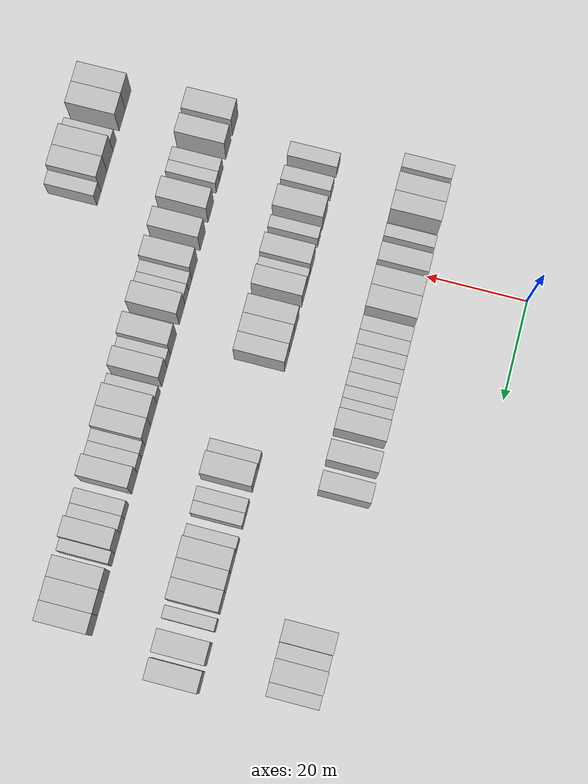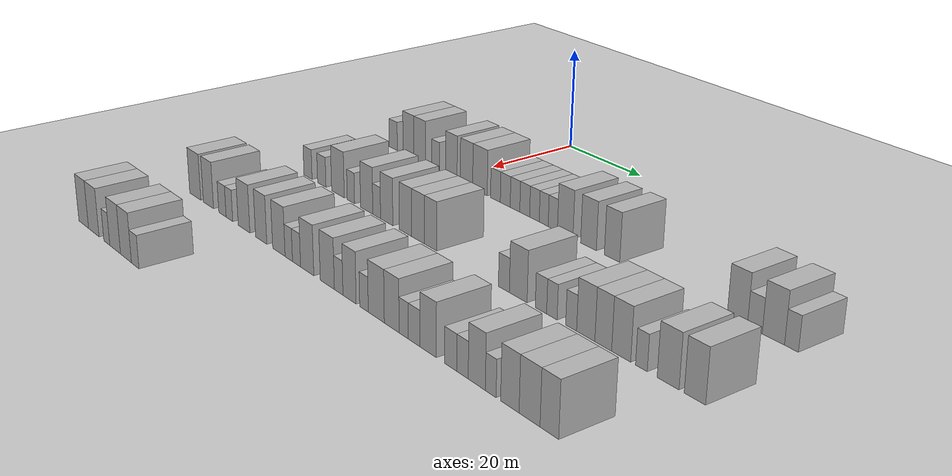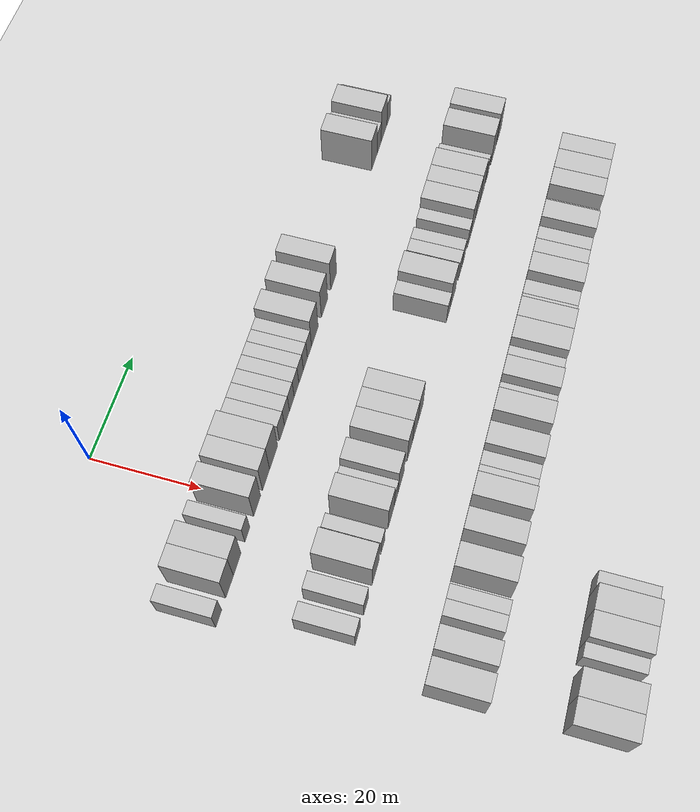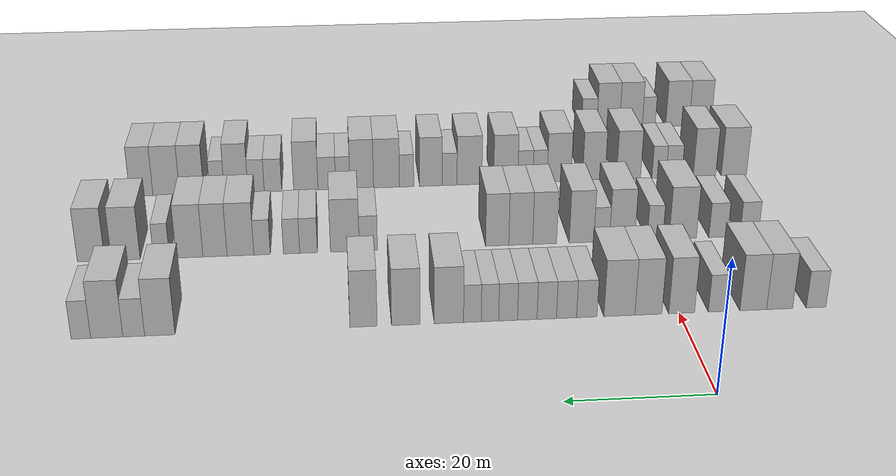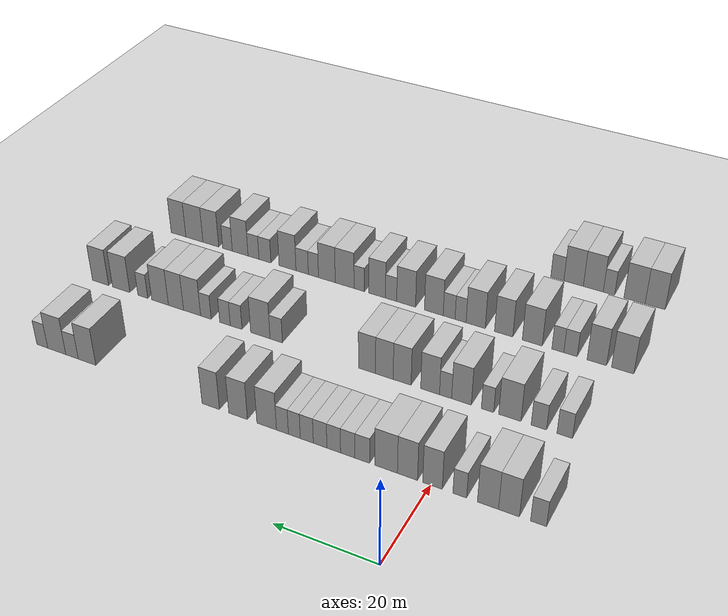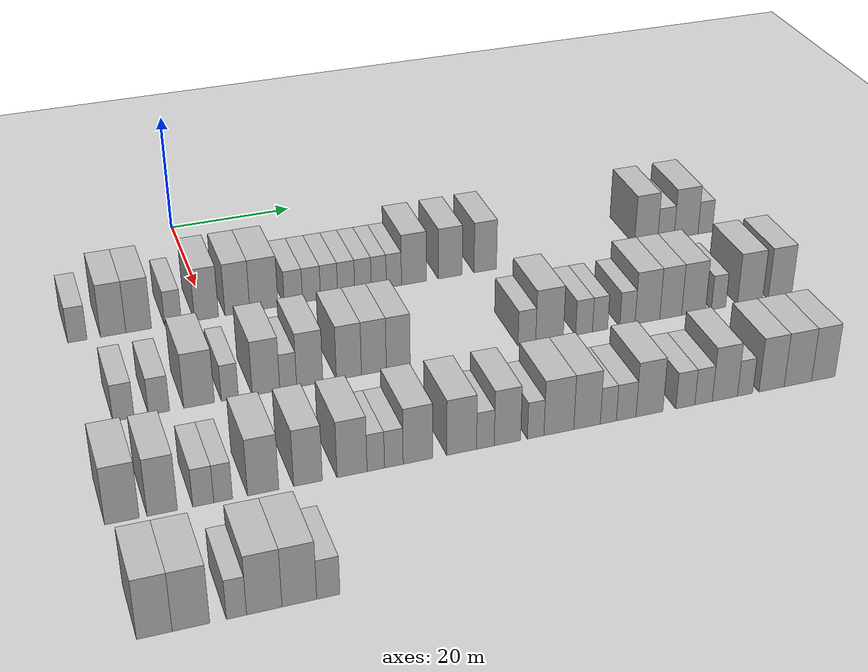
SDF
<sdf version="1.6">
 <world name="default">
  <include><name>ground_plane_1</name><uri>model://HANNAS_ground_plane</uri></include>
  <model name="building_91">
   <static>1</static>
   <pose>25.0000 -19.8801 0 0.000000 0.000000 0.000000</pose>
   <link name="link">
    <pose>0 0 3.00 0 0 0</pose>
    <collision name="collision"><geometry><box><size>10.0000 2.8646 6.0000</size></box></geometry></collision>
    <visual name="visual">
     <cast_shadows>0</cast_shadows>
     <geometry><box><size>10.0000 2.8646 6.0000</size></box></geometry>
     <material>
      <script>
       <uri>model://HANNAS_wall/materials/scripts</uri>
       <uri>model://HANNAS_wall/materials/textures</uri>
       <name>vrc/HANNAS_wall</name>
      </script>
     </material>
    </visual>
   </link>
  </model>
  <model name="building_92">
   <static>1</static>
   <pose>25.0000 -14.5458 0 0.000000 0.000000 0.000000</pose>
   <link name="link">
    <pose>0 0 4.50 0 0 0</pose>
    <collision name="collision"><geometry><box><size>10.0000 3.8040 9.0000</size></box></geometry></collision>
    <visual name="visual">
     <cast_shadows>0</cast_shadows>
     <geometry><box><size>10.0000 3.8040 9.0000</size></box></geometry>
     <material>
      <script>
       <uri>model://HANNAS_wall/materials/scripts</uri>
       <uri>model://HANNAS_wall/materials/textures</uri>
       <name>vrc/HANNAS_wall</name>
      </script>
     </material>
    </visual>
   </link>
  </model>
  <model name="building_93">
   <static>1</static>
   <pose>25.0000 -10.7004 0 0.000000 0.000000 0.000000</pose>
   <link name="link">
    <pose>0 0 4.50 0 0 0</pose>
    <collision name="collision"><geometry><box><size>10.0000 3.8866 9.0000</size></box></geometry></collision>
    <visual name="visual">
     <cast_shadows>0</cast_shadows>
     <geometry><box><size>10.0000 3.8866 9.0000</size></box></geometry>
     <material>
      <script>
       <uri>model://HANNAS_wall/materials/scripts</uri>
       <uri>model://HANNAS_wall/materials/textures</uri>
       <name>vrc/HANNAS_wall</name>
      </script>
     </material>
    </visual>
   </link>
  </model>
  <model name="building_94">
   <static>1</static>
   <pose>25.0000 -5.4695 0 0.000000 0.000000 0.000000</pose>
   <link name="link">
    <pose>0 0 3.00 0 0 0</pose>
    <collision name="collision"><geometry><box><size>10.0000 2.5754 6.0000</size></box></geometry></collision>
    <visual name="visual">
     <cast_shadows>0</cast_shadows>
     <geometry><box><size>10.0000 2.5754 6.0000</size></box></geometry>
     <material>
      <script>
       <uri>model://HANNAS_wall/materials/scripts</uri>
       <uri>model://HANNAS_wall/materials/textures</uri>
       <name>vrc/HANNAS_wall</name>
      </script>
     </material>
    </visual>
   </link>
  </model>
  <model name="building_95">
   <static>1</static>
   <pose>25.0000 -0.3213 0 0.000000 0.000000 0.000000</pose>
   <link name="link">
    <pose>0 0 4.50 0 0 0</pose>
    <collision name="collision"><geometry><box><size>10.0000 3.7209 9.0000</size></box></geometry></collision>
    <visual name="visual">
     <cast_shadows>0</cast_shadows>
     <geometry><box><size>10.0000 3.7209 9.0000</size></box></geometry>
     <material>
      <script>
       <uri>model://HANNAS_wall/materials/scripts</uri>
       <uri>model://HANNAS_wall/materials/textures</uri>
       <name>vrc/HANNAS_wall</name>
      </script>
     </material>
    </visual>
   </link>
  </model>
  <model name="building_96">
   <static>1</static>
   <pose>25.0000 4.4772 0 0.000000 0.000000 0.000000</pose>
   <link name="link">
    <pose>0 0 4.50 0 0 0</pose>
    <collision name="collision"><geometry><box><size>10.0000 3.8762 9.0000</size></box></geometry></collision>
    <visual name="visual">
     <cast_shadows>0</cast_shadows>
     <geometry><box><size>10.0000 3.8762 9.0000</size></box></geometry>
     <material>
      <script>
       <uri>model://HANNAS_wall/materials/scripts</uri>
       <uri>model://HANNAS_wall/materials/textures</uri>
       <name>vrc/HANNAS_wall</name>
      </script>
     </material>
    </visual>
   </link>
  </model>
  <model name="building_97">
   <static>1</static>
   <pose>25.0000 8.6378 0 0.000000 0.000000 0.000000</pose>
   <link name="link">
    <pose>0 0 4.50 0 0 0</pose>
    <collision name="collision"><geometry><box><size>10.0000 4.4450 9.0000</size></box></geometry></collision>
    <visual name="visual">
     <cast_shadows>0</cast_shadows>
     <geometry><box><size>10.0000 4.4450 9.0000</size></box></geometry>
     <material>
      <script>
       <uri>model://HANNAS_wall/materials/scripts</uri>
       <uri>model://HANNAS_wall/materials/textures</uri>
       <name>vrc/HANNAS_wall</name>
      </script>
     </material>
    </visual>
   </link>
  </model>
  <model name="building_98">
   <static>1</static>
   <pose>25.0000 13.3096 0 0.000000 0.000000 0.000000</pose>
   <link name="link">
    <pose>0 0 3.00 0 0 0</pose>
    <collision name="collision"><geometry><box><size>10.0000 2.8985 6.0000</size></box></geometry></collision>
    <visual name="visual">
     <cast_shadows>0</cast_shadows>
     <geometry><box><size>10.0000 2.8985 6.0000</size></box></geometry>
     <material>
      <script>
       <uri>model://HANNAS_wall/materials/scripts</uri>
       <uri>model://HANNAS_wall/materials/textures</uri>
       <name>vrc/HANNAS_wall</name>
      </script>
     </material>
    </visual>
   </link>
  </model>
  <model name="building_99">
   <static>1</static>
   <pose>25.0000 16.2000 0 0.000000 0.000000 0.000000</pose>
   <link name="link">
    <pose>0 0 3.00 0 0 0</pose>
    <collision name="collision"><geometry><box><size>10.0000 2.8823 6.0000</size></box></geometry></collision>
    <visual name="visual">
     <cast_shadows>0</cast_shadows>
     <geometry><box><size>10.0000 2.8823 6.0000</size></box></geometry>
     <material>
      <script>
       <uri>model://HANNAS_wall/materials/scripts</uri>
       <uri>model://HANNAS_wall/materials/textures</uri>
       <name>vrc/HANNAS_wall</name>
      </script>
     </material>
    </visual>
   </link>
  </model>
  <model name="building_100">
   <static>1</static>
   <pose>25.0000 19.0200 0 0.000000 0.000000 0.000000</pose>
   <link name="link">
    <pose>0 0 3.00 0 0 0</pose>
    <collision name="collision"><geometry><box><size>10.0000 2.7577 6.0000</size></box></geometry></collision>
    <visual name="visual">
     <cast_shadows>0</cast_shadows>
     <geometry><box><size>10.0000 2.7577 6.0000</size></box></geometry>
     <material>
      <script>
       <uri>model://HANNAS_wall/materials/scripts</uri>
       <uri>model://HANNAS_wall/materials/textures</uri>
       <name>vrc/HANNAS_wall</name>
      </script>
     </material>
    </visual>
   </link>
  </model>
  <model name="building_101">
   <static>1</static>
   <pose>25.0000 21.7837 0 0.000000 0.000000 0.000000</pose>
   <link name="link">
    <pose>0 0 3.00 0 0 0</pose>
    <collision name="collision"><geometry><box><size>10.0000 2.7697 6.0000</size></box></geometry></collision>
    <visual name="visual">
     <cast_shadows>0</cast_shadows>
     <geometry><box><size>10.0000 2.7697 6.0000</size></box></geometry>
     <material>
      <script>
       <uri>model://HANNAS_wall/materials/scripts</uri>
       <uri>model://HANNAS_wall/materials/textures</uri>
       <name>vrc/HANNAS_wall</name>
      </script>
     </material>
    </visual>
   </link>
  </model>
  <model name="building_102">
   <static>1</static>
   <pose>25.0000 24.5095 0 0.000000 0.000000 0.000000</pose>
   <link name="link">
    <pose>0 0 3.00 0 0 0</pose>
    <collision name="collision"><geometry><box><size>10.0000 2.6818 6.0000</size></box></geometry></collision>
    <visual name="visual">
     <cast_shadows>0</cast_shadows>
     <geometry><box><size>10.0000 2.6818 6.0000</size></box></geometry>
     <material>
      <script>
       <uri>model://HANNAS_wall/materials/scripts</uri>
       <uri>model://HANNAS_wall/materials/textures</uri>
       <name>vrc/HANNAS_wall</name>
      </script>
     </material>
    </visual>
   </link>
  </model>
  <model name="building_103">
   <static>1</static>
   <pose>25.0000 27.0807 0 0.000000 0.000000 0.000000</pose>
   <link name="link">
    <pose>0 0 3.00 0 0 0</pose>
    <collision name="collision"><geometry><box><size>10.0000 2.4607 6.0000</size></box></geometry></collision>
    <visual name="visual">
     <cast_shadows>0</cast_shadows>
     <geometry><box><size>10.0000 2.4607 6.0000</size></box></geometry>
     <material>
      <script>
       <uri>model://HANNAS_wall/materials/scripts</uri>
       <uri>model://HANNAS_wall/materials/textures</uri>
       <name>vrc/HANNAS_wall</name>
      </script>
     </material>
    </visual>
   </link>
  </model>
  <model name="building_104">
   <static>1</static>
   <pose>25.0000 29.5538 0 0.000000 0.000000 0.000000</pose>
   <link name="link">
    <pose>0 0 3.00 0 0 0</pose>
    <collision name="collision"><geometry><box><size>10.0000 2.4853 6.0000</size></box></geometry></collision>
    <visual name="visual">
     <cast_shadows>0</cast_shadows>
     <geometry><box><size>10.0000 2.4853 6.0000</size></box></geometry>
     <material>
      <script>
       <uri>model://HANNAS_wall/materials/scripts</uri>
       <uri>model://HANNAS_wall/materials/textures</uri>
       <name>vrc/HANNAS_wall</name>
      </script>
     </material>
    </visual>
   </link>
  </model>
  <model name="building_105">
   <static>1</static>
   <pose>25.0000 32.8549 0 0.000000 0.000000 0.000000</pose>
   <link name="link">
    <pose>0 0 4.50 0 0 0</pose>
    <collision name="collision"><geometry><box><size>10.0000 4.1170 9.0000</size></box></geometry></collision>
    <visual name="visual">
     <cast_shadows>0</cast_shadows>
     <geometry><box><size>10.0000 4.1170 9.0000</size></box></geometry>
     <material>
      <script>
       <uri>model://HANNAS_wall/materials/scripts</uri>
       <uri>model://HANNAS_wall/materials/textures</uri>
       <name>vrc/HANNAS_wall</name>
      </script>
     </material>
    </visual>
   </link>
  </model>
  <model name="building_106">
   <static>1</static>
   <pose>25.0000 38.9192 0 0.000000 0.000000 0.000000</pose>
   <link name="link">
    <pose>0 0 4.50 0 0 0</pose>
    <collision name="collision"><geometry><box><size>10.0000 4.0115 9.0000</size></box></geometry></collision>
    <visual name="visual">
     <cast_shadows>0</cast_shadows>
     <geometry><box><size>10.0000 4.0115 9.0000</size></box></geometry>
     <material>
      <script>
       <uri>model://HANNAS_wall/materials/scripts</uri>
       <uri>model://HANNAS_wall/materials/textures</uri>
       <name>vrc/HANNAS_wall</name>
      </script>
     </material>
    </visual>
   </link>
  </model>
  <model name="building_107">
   <static>1</static>
   <pose>25.0000 44.8254 0 0.000000 0.000000 0.000000</pose>
   <link name="link">
    <pose>0 0 4.50 0 0 0</pose>
    <collision name="collision"><geometry><box><size>10.0000 3.8010 9.0000</size></box></geometry></collision>
    <visual name="visual">
     <cast_shadows>0</cast_shadows>
     <geometry><box><size>10.0000 3.8010 9.0000</size></box></geometry>
     <material>
      <script>
       <uri>model://HANNAS_wall/materials/scripts</uri>
       <uri>model://HANNAS_wall/materials/textures</uri>
       <name>vrc/HANNAS_wall</name>
      </script>
     </material>
    </visual>
   </link>
  </model>
  <model name="building_108">
   <static>1</static>
   <pose>25.0000 72.9368 0 0.000000 0.000000 0.000000</pose>
   <link name="link">
    <pose>0 0 4.50 0 0 0</pose>
    <collision name="collision"><geometry><box><size>10.0000 4.1406 9.0000</size></box></geometry></collision>
    <visual name="visual">
     <cast_shadows>0</cast_shadows>
     <geometry><box><size>10.0000 4.1406 9.0000</size></box></geometry>
     <material>
      <script>
       <uri>model://HANNAS_wall/materials/scripts</uri>
       <uri>model://HANNAS_wall/materials/textures</uri>
       <name>vrc/HANNAS_wall</name>
      </script>
     </material>
    </visual>
   </link>
  </model>
  <model name="building_109">
   <static>1</static>
   <pose>25.0000 76.4943 0 0.000000 0.000000 0.000000</pose>
   <link name="link">
    <pose>0 0 3.00 0 0 0</pose>
    <collision name="collision"><geometry><box><size>10.0000 2.9743 6.0000</size></box></geometry></collision>
    <visual name="visual">
     <cast_shadows>0</cast_shadows>
     <geometry><box><size>10.0000 2.9743 6.0000</size></box></geometry>
     <material>
      <script>
       <uri>model://HANNAS_wall/materials/scripts</uri>
       <uri>model://HANNAS_wall/materials/textures</uri>
       <name>vrc/HANNAS_wall</name>
      </script>
     </material>
    </visual>
   </link>
  </model>
  <model name="building_110">
   <static>1</static>
   <pose>25.0000 80.1587 0 0.000000 0.000000 0.000000</pose>
   <link name="link">
    <pose>0 0 4.50 0 0 0</pose>
    <collision name="collision"><geometry><box><size>10.0000 4.3544 9.0000</size></box></geometry></collision>
    <visual name="visual">
     <cast_shadows>0</cast_shadows>
     <geometry><box><size>10.0000 4.3544 9.0000</size></box></geometry>
     <material>
      <script>
       <uri>model://HANNAS_wall/materials/scripts</uri>
       <uri>model://HANNAS_wall/materials/textures</uri>
       <name>vrc/HANNAS_wall</name>
      </script>
     </material>
    </visual>
   </link>
  </model>
  <model name="building_111">
   <static>1</static>
   <pose>25.0000 83.6627 0 0.000000 0.000000 0.000000</pose>
   <link name="link">
    <pose>0 0 3.00 0 0 0</pose>
    <collision name="collision"><geometry><box><size>10.0000 2.6536 6.0000</size></box></geometry></collision>
    <visual name="visual">
     <cast_shadows>0</cast_shadows>
     <geometry><box><size>10.0000 2.6536 6.0000</size></box></geometry>
     <material>
      <script>
       <uri>model://HANNAS_wall/materials/scripts</uri>
       <uri>model://HANNAS_wall/materials/textures</uri>
       <name>vrc/HANNAS_wall</name>
      </script>
     </material>
    </visual>
   </link>
  </model>
  <model name="building_276">
   <static>1</static>
   <pose>47.0000 -16.6254 0 0.000000 0.000000 0.000000</pose>
   <link name="link">
    <pose>0 0 3.00 0 0 0</pose>
    <collision name="collision"><geometry><box><size>10.0000 2.9755 6.0000</size></box></geometry></collision>
    <visual name="visual">
     <cast_shadows>0</cast_shadows>
     <geometry><box><size>10.0000 2.9755 6.0000</size></box></geometry>
     <material>
      <script>
       <uri>model://HANNAS_wall/materials/scripts</uri>
       <uri>model://HANNAS_wall/materials/textures</uri>
       <name>vrc/HANNAS_wall</name>
      </script>
     </material>
    </visual>
   </link>
  </model>
  <model name="building_277">
   <static>1</static>
   <pose>47.0000 -11.6487 0 0.000000 0.000000 0.000000</pose>
   <link name="link">
    <pose>0 0 3.00 0 0 0</pose>
    <collision name="collision"><geometry><box><size>10.0000 2.9779 6.0000</size></box></geometry></collision>
    <visual name="visual">
     <cast_shadows>0</cast_shadows>
     <geometry><box><size>10.0000 2.9779 6.0000</size></box></geometry>
     <material>
      <script>
       <uri>model://HANNAS_wall/materials/scripts</uri>
       <uri>model://HANNAS_wall/materials/textures</uri>
       <name>vrc/HANNAS_wall</name>
      </script>
     </material>
    </visual>
   </link>
  </model>
  <model name="building_278">
   <static>1</static>
   <pose>47.0000 -5.9718 0 0.000000 0.000000 0.000000</pose>
   <link name="link">
    <pose>0 0 4.50 0 0 0</pose>
    <collision name="collision"><geometry><box><size>10.0000 4.3759 9.0000</size></box></geometry></collision>
    <visual name="visual">
     <cast_shadows>0</cast_shadows>
     <geometry><box><size>10.0000 4.3759 9.0000</size></box></geometry>
     <material>
      <script>
       <uri>model://HANNAS_wall/materials/scripts</uri>
       <uri>model://HANNAS_wall/materials/textures</uri>
       <name>vrc/HANNAS_wall</name>
      </script>
     </material>
    </visual>
   </link>
  </model>
  <model name="building_279">
   <static>1</static>
   <pose>47.0000 -1.5469 0 0.000000 0.000000 0.000000</pose>
   <link name="link">
    <pose>0 0 3.00 0 0 0</pose>
    <collision name="collision"><geometry><box><size>10.0000 2.4739 6.0000</size></box></geometry></collision>
    <visual name="visual">
     <cast_shadows>0</cast_shadows>
     <geometry><box><size>10.0000 2.4739 6.0000</size></box></geometry>
     <material>
      <script>
       <uri>model://HANNAS_wall/materials/scripts</uri>
       <uri>model://HANNAS_wall/materials/textures</uri>
       <name>vrc/HANNAS_wall</name>
      </script>
     </material>
    </visual>
   </link>
  </model>
  <model name="building_280">
   <static>1</static>
   <pose>47.0000 3.6939 0 0.000000 0.000000 0.000000</pose>
   <link name="link">
    <pose>0 0 4.50 0 0 0</pose>
    <collision name="collision"><geometry><box><size>10.0000 4.0076 9.0000</size></box></geometry></collision>
    <visual name="visual">
     <cast_shadows>0</cast_shadows>
     <geometry><box><size>10.0000 4.0076 9.0000</size></box></geometry>
     <material>
      <script>
       <uri>model://HANNAS_wall/materials/scripts</uri>
       <uri>model://HANNAS_wall/materials/textures</uri>
       <name>vrc/HANNAS_wall</name>
      </script>
     </material>
    </visual>
   </link>
  </model>
  <model name="building_281">
   <static>1</static>
   <pose>47.0000 6.9345 0 0.000000 0.000000 0.000000</pose>
   <link name="link">
    <pose>0 0 3.00 0 0 0</pose>
    <collision name="collision"><geometry><box><size>10.0000 2.4735 6.0000</size></box></geometry></collision>
    <visual name="visual">
     <cast_shadows>0</cast_shadows>
     <geometry><box><size>10.0000 2.4735 6.0000</size></box></geometry>
     <material>
      <script>
       <uri>model://HANNAS_wall/materials/scripts</uri>
       <uri>model://HANNAS_wall/materials/textures</uri>
       <name>vrc/HANNAS_wall</name>
      </script>
     </material>
    </visual>
   </link>
  </model>
  <model name="building_282">
   <static>1</static>
   <pose>47.0000 10.1159 0 0.000000 0.000000 0.000000</pose>
   <link name="link">
    <pose>0 0 4.50 0 0 0</pose>
    <collision name="collision"><geometry><box><size>10.0000 3.8894 9.0000</size></box></geometry></collision>
    <visual name="visual">
     <cast_shadows>0</cast_shadows>
     <geometry><box><size>10.0000 3.8894 9.0000</size></box></geometry>
     <material>
      <script>
       <uri>model://HANNAS_wall/materials/scripts</uri>
       <uri>model://HANNAS_wall/materials/textures</uri>
       <name>vrc/HANNAS_wall</name>
      </script>
     </material>
    </visual>
   </link>
  </model>
  <model name="building_283">
   <static>1</static>
   <pose>47.0000 15.9411 0 0.000000 0.000000 0.000000</pose>
   <link name="link">
    <pose>0 0 4.50 0 0 0</pose>
    <collision name="collision"><geometry><box><size>10.0000 3.7609 9.0000</size></box></geometry></collision>
    <visual name="visual">
     <cast_shadows>0</cast_shadows>
     <geometry><box><size>10.0000 3.7609 9.0000</size></box></geometry>
     <material>
      <script>
       <uri>model://HANNAS_wall/materials/scripts</uri>
       <uri>model://HANNAS_wall/materials/textures</uri>
       <name>vrc/HANNAS_wall</name>
      </script>
     </material>
    </visual>
   </link>
  </model>
  <model name="building_284">
   <static>1</static>
   <pose>47.0000 19.6962 0 0.000000 0.000000 0.000000</pose>
   <link name="link">
    <pose>0 0 4.50 0 0 0</pose>
    <collision name="collision"><geometry><box><size>10.0000 3.7493 9.0000</size></box></geometry></collision>
    <visual name="visual">
     <cast_shadows>0</cast_shadows>
     <geometry><box><size>10.0000 3.7493 9.0000</size></box></geometry>
     <material>
      <script>
       <uri>model://HANNAS_wall/materials/scripts</uri>
       <uri>model://HANNAS_wall/materials/textures</uri>
       <name>vrc/HANNAS_wall</name>
      </script>
     </material>
    </visual>
   </link>
  </model>
  <model name="building_285">
   <static>1</static>
   <pose>47.0000 23.3932 0 0.000000 0.000000 0.000000</pose>
   <link name="link">
    <pose>0 0 4.50 0 0 0</pose>
    <collision name="collision"><geometry><box><size>10.0000 3.6447 9.0000</size></box></geometry></collision>
    <visual name="visual">
     <cast_shadows>0</cast_shadows>
     <geometry><box><size>10.0000 3.6447 9.0000</size></box></geometry>
     <material>
      <script>
       <uri>model://HANNAS_wall/materials/scripts</uri>
       <uri>model://HANNAS_wall/materials/textures</uri>
       <name>vrc/HANNAS_wall</name>
      </script>
     </material>
    </visual>
   </link>
  </model>
  <model name="building_286">
   <static>1</static>
   <pose>47.0000 43.4274 0 0.000000 0.000000 0.000000</pose>
   <link name="link">
    <pose>0 0 3.00 0 0 0</pose>
    <collision name="collision"><geometry><box><size>10.0000 2.8079 6.0000</size></box></geometry></collision>
    <visual name="visual">
     <cast_shadows>0</cast_shadows>
     <geometry><box><size>10.0000 2.8079 6.0000</size></box></geometry>
     <material>
      <script>
       <uri>model://HANNAS_wall/materials/scripts</uri>
       <uri>model://HANNAS_wall/materials/textures</uri>
       <name>vrc/HANNAS_wall</name>
      </script>
     </material>
    </visual>
   </link>
  </model>
  <model name="building_287">
   <static>1</static>
   <pose>47.0000 47.0505 0 0.000000 0.000000 0.000000</pose>
   <link name="link">
    <pose>0 0 4.50 0 0 0</pose>
    <collision name="collision"><geometry><box><size>10.0000 4.4383 9.0000</size></box></geometry></collision>
    <visual name="visual">
     <cast_shadows>0</cast_shadows>
     <geometry><box><size>10.0000 4.4383 9.0000</size></box></geometry>
     <material>
      <script>
       <uri>model://HANNAS_wall/materials/scripts</uri>
       <uri>model://HANNAS_wall/materials/textures</uri>
       <name>vrc/HANNAS_wall</name>
      </script>
     </material>
    </visual>
   </link>
  </model>
  <model name="building_288">
   <static>1</static>
   <pose>47.0000 52.6348 0 0.000000 0.000000 0.000000</pose>
   <link name="link">
    <pose>0 0 3.00 0 0 0</pose>
    <collision name="collision"><geometry><box><size>10.0000 2.7305 6.0000</size></box></geometry></collision>
    <visual name="visual">
     <cast_shadows>0</cast_shadows>
     <geometry><box><size>10.0000 2.7305 6.0000</size></box></geometry>
     <material>
      <script>
       <uri>model://HANNAS_wall/materials/scripts</uri>
       <uri>model://HANNAS_wall/materials/textures</uri>
       <name>vrc/HANNAS_wall</name>
      </script>
     </material>
    </visual>
   </link>
  </model>
  <model name="building_289">
   <static>1</static>
   <pose>47.0000 55.2450 0 0.000000 0.000000 0.000000</pose>
   <link name="link">
    <pose>0 0 3.00 0 0 0</pose>
    <collision name="collision"><geometry><box><size>10.0000 2.4899 6.0000</size></box></geometry></collision>
    <visual name="visual">
     <cast_shadows>0</cast_shadows>
     <geometry><box><size>10.0000 2.4899 6.0000</size></box></geometry>
     <material>
      <script>
       <uri>model://HANNAS_wall/materials/scripts</uri>
       <uri>model://HANNAS_wall/materials/textures</uri>
       <name>vrc/HANNAS_wall</name>
      </script>
     </material>
    </visual>
   </link>
  </model>
  <model name="building_290">
   <static>1</static>
   <pose>47.0000 59.7465 0 0.000000 0.000000 0.000000</pose>
   <link name="link">
    <pose>0 0 3.00 0 0 0</pose>
    <collision name="collision"><geometry><box><size>10.0000 2.5130 6.0000</size></box></geometry></collision>
    <visual name="visual">
     <cast_shadows>0</cast_shadows>
     <geometry><box><size>10.0000 2.5130 6.0000</size></box></geometry>
     <material>
      <script>
       <uri>model://HANNAS_wall/materials/scripts</uri>
       <uri>model://HANNAS_wall/materials/textures</uri>
       <name>vrc/HANNAS_wall</name>
      </script>
     </material>
    </visual>
   </link>
  </model>
  <model name="building_291">
   <static>1</static>
   <pose>47.0000 63.0501 0 0.000000 0.000000 0.000000</pose>
   <link name="link">
    <pose>0 0 4.50 0 0 0</pose>
    <collision name="collision"><geometry><box><size>10.0000 4.0941 9.0000</size></box></geometry></collision>
    <visual name="visual">
     <cast_shadows>0</cast_shadows>
     <geometry><box><size>10.0000 4.0941 9.0000</size></box></geometry>
     <material>
      <script>
       <uri>model://HANNAS_wall/materials/scripts</uri>
       <uri>model://HANNAS_wall/materials/textures</uri>
       <name>vrc/HANNAS_wall</name>
      </script>
     </material>
    </visual>
   </link>
  </model>
  <model name="building_292">
   <static>1</static>
   <pose>47.0000 66.9320 0 0.000000 0.000000 0.000000</pose>
   <link name="link">
    <pose>0 0 4.50 0 0 0</pose>
    <collision name="collision"><geometry><box><size>10.0000 3.6697 9.0000</size></box></geometry></collision>
    <visual name="visual">
     <cast_shadows>0</cast_shadows>
     <geometry><box><size>10.0000 3.6697 9.0000</size></box></geometry>
     <material>
      <script>
       <uri>model://HANNAS_wall/materials/scripts</uri>
       <uri>model://HANNAS_wall/materials/textures</uri>
       <name>vrc/HANNAS_wall</name>
      </script>
     </material>
    </visual>
   </link>
  </model>
  <model name="building_293">
   <static>1</static>
   <pose>47.0000 70.7928 0 0.000000 0.000000 0.000000</pose>
   <link name="link">
    <pose>0 0 4.50 0 0 0</pose>
    <collision name="collision"><geometry><box><size>10.0000 4.0519 9.0000</size></box></geometry></collision>
    <visual name="visual">
     <cast_shadows>0</cast_shadows>
     <geometry><box><size>10.0000 4.0519 9.0000</size></box></geometry>
     <material>
      <script>
       <uri>model://HANNAS_wall/materials/scripts</uri>
       <uri>model://HANNAS_wall/materials/textures</uri>
       <name>vrc/HANNAS_wall</name>
      </script>
     </material>
    </visual>
   </link>
  </model>
  <model name="building_294">
   <static>1</static>
   <pose>47.0000 75.0327 0 0.000000 0.000000 0.000000</pose>
   <link name="link">
    <pose>0 0 3.00 0 0 0</pose>
    <collision name="collision"><geometry><box><size>10.0000 2.4280 6.0000</size></box></geometry></collision>
    <visual name="visual">
     <cast_shadows>0</cast_shadows>
     <geometry><box><size>10.0000 2.4280 6.0000</size></box></geometry>
     <material>
      <script>
       <uri>model://HANNAS_wall/materials/scripts</uri>
       <uri>model://HANNAS_wall/materials/textures</uri>
       <name>vrc/HANNAS_wall</name>
      </script>
     </material>
    </visual>
   </link>
  </model>
  <model name="building_295">
   <static>1</static>
   <pose>47.0000 80.4167 0 0.000000 0.000000 0.000000</pose>
   <link name="link">
    <pose>0 0 4.50 0 0 0</pose>
    <collision name="collision"><geometry><box><size>10.0000 4.3399 9.0000</size></box></geometry></collision>
    <visual name="visual">
     <cast_shadows>0</cast_shadows>
     <geometry><box><size>10.0000 4.3399 9.0000</size></box></geometry>
     <material>
      <script>
       <uri>model://HANNAS_wall/materials/scripts</uri>
       <uri>model://HANNAS_wall/materials/textures</uri>
       <name>vrc/HANNAS_wall</name>
      </script>
     </material>
    </visual>
   </link>
  </model>
  <model name="building_296">
   <static>1</static>
   <pose>47.0000 85.6329 0 0.000000 0.000000 0.000000</pose>
   <link name="link">
    <pose>0 0 4.50 0 0 0</pose>
    <collision name="collision"><geometry><box><size>10.0000 4.0925 9.0000</size></box></geometry></collision>
    <visual name="visual">
     <cast_shadows>0</cast_shadows>
     <geometry><box><size>10.0000 4.0925 9.0000</size></box></geometry>
     <material>
      <script>
       <uri>model://HANNAS_wall/materials/scripts</uri>
       <uri>model://HANNAS_wall/materials/textures</uri>
       <name>vrc/HANNAS_wall</name>
      </script>
     </material>
    </visual>
   </link>
  </model>
  <model name="building_453">
   <static>1</static>
   <pose>69.0000 -20.4551 0 0.000000 0.000000 0.000000</pose>
   <link name="link">
    <pose>0 0 4.50 0 0 0</pose>
    <collision name="collision"><geometry><box><size>10.0000 4.4356 9.0000</size></box></geometry></collision>
    <visual name="visual">
     <cast_shadows>0</cast_shadows>
     <geometry><box><size>10.0000 4.4356 9.0000</size></box></geometry>
     <material>
      <script>
       <uri>model://HANNAS_wall/materials/scripts</uri>
       <uri>model://HANNAS_wall/materials/textures</uri>
       <name>vrc/HANNAS_wall</name>
      </script>
     </material>
    </visual>
   </link>
  </model>
  <model name="building_454">
   <static>1</static>
   <pose>69.0000 -15.2654 0 0.000000 0.000000 0.000000</pose>
   <link name="link">
    <pose>0 0 4.50 0 0 0</pose>
    <collision name="collision"><geometry><box><size>10.0000 3.9438 9.0000</size></box></geometry></collision>
    <visual name="visual">
     <cast_shadows>0</cast_shadows>
     <geometry><box><size>10.0000 3.9438 9.0000</size></box></geometry>
     <material>
      <script>
       <uri>model://HANNAS_wall/materials/scripts</uri>
       <uri>model://HANNAS_wall/materials/textures</uri>
       <name>vrc/HANNAS_wall</name>
      </script>
     </material>
    </visual>
   </link>
  </model>
  <model name="building_455">
   <static>1</static>
   <pose>69.0000 -9.9181 0 0.000000 0.000000 0.000000</pose>
   <link name="link">
    <pose>0 0 3.00 0 0 0</pose>
    <collision name="collision"><geometry><box><size>10.0000 2.7509 6.0000</size></box></geometry></collision>
    <visual name="visual">
     <cast_shadows>0</cast_shadows>
     <geometry><box><size>10.0000 2.7509 6.0000</size></box></geometry>
     <material>
      <script>
       <uri>model://HANNAS_wall/materials/scripts</uri>
       <uri>model://HANNAS_wall/materials/textures</uri>
       <name>vrc/HANNAS_wall</name>
      </script>
     </material>
    </visual>
   </link>
  </model>
  <model name="building_456">
   <static>1</static>
   <pose>69.0000 -7.3071 0 0.000000 0.000000 0.000000</pose>
   <link name="link">
    <pose>0 0 3.00 0 0 0</pose>
    <collision name="collision"><geometry><box><size>10.0000 2.4711 6.0000</size></box></geometry></collision>
    <visual name="visual">
     <cast_shadows>0</cast_shadows>
     <geometry><box><size>10.0000 2.4711 6.0000</size></box></geometry>
     <material>
      <script>
       <uri>model://HANNAS_wall/materials/scripts</uri>
       <uri>model://HANNAS_wall/materials/textures</uri>
       <name>vrc/HANNAS_wall</name>
      </script>
     </material>
    </visual>
   </link>
  </model>
  <model name="building_457">
   <static>1</static>
   <pose>69.0000 -1.9777 0 0.000000 0.000000 0.000000</pose>
   <link name="link">
    <pose>0 0 4.50 0 0 0</pose>
    <collision name="collision"><geometry><box><size>10.0000 4.1878 9.0000</size></box></geometry></collision>
    <visual name="visual">
     <cast_shadows>0</cast_shadows>
     <geometry><box><size>10.0000 4.1878 9.0000</size></box></geometry>
     <material>
      <script>
       <uri>model://HANNAS_wall/materials/scripts</uri>
       <uri>model://HANNAS_wall/materials/textures</uri>
       <name>vrc/HANNAS_wall</name>
      </script>
     </material>
    </visual>
   </link>
  </model>
  <model name="building_458">
   <static>1</static>
   <pose>69.0000 4.0662 0 0.000000 0.000000 0.000000</pose>
   <link name="link">
    <pose>0 0 4.50 0 0 0</pose>
    <collision name="collision"><geometry><box><size>10.0000 3.9000 9.0000</size></box></geometry></collision>
    <visual name="visual">
     <cast_shadows>0</cast_shadows>
     <geometry><box><size>10.0000 3.9000 9.0000</size></box></geometry>
     <material>
      <script>
       <uri>model://HANNAS_wall/materials/scripts</uri>
       <uri>model://HANNAS_wall/materials/textures</uri>
       <name>vrc/HANNAS_wall</name>
      </script>
     </material>
    </visual>
   </link>
  </model>
  <model name="building_459">
   <static>1</static>
   <pose>69.0000 10.0888 0 0.000000 0.000000 0.000000</pose>
   <link name="link">
    <pose>0 0 4.50 0 0 0</pose>
    <collision name="collision"><geometry><box><size>10.0000 4.1451 9.0000</size></box></geometry></collision>
    <visual name="visual">
     <cast_shadows>0</cast_shadows>
     <geometry><box><size>10.0000 4.1451 9.0000</size></box></geometry>
     <material>
      <script>
       <uri>model://HANNAS_wall/materials/scripts</uri>
       <uri>model://HANNAS_wall/materials/textures</uri>
       <name>vrc/HANNAS_wall</name>
      </script>
     </material>
    </visual>
   </link>
  </model>
  <model name="building_460">
   <static>1</static>
   <pose>69.0000 13.3684 0 0.000000 0.000000 0.000000</pose>
   <link name="link">
    <pose>0 0 3.00 0 0 0</pose>
    <collision name="collision"><geometry><box><size>10.0000 2.4141 6.0000</size></box></geometry></collision>
    <visual name="visual">
     <cast_shadows>0</cast_shadows>
     <geometry><box><size>10.0000 2.4141 6.0000</size></box></geometry>
     <material>
      <script>
       <uri>model://HANNAS_wall/materials/scripts</uri>
       <uri>model://HANNAS_wall/materials/textures</uri>
       <name>vrc/HANNAS_wall</name>
      </script>
     </material>
    </visual>
   </link>
  </model>
  <model name="building_461">
   <static>1</static>
   <pose>69.0000 15.8814 0 0.000000 0.000000 0.000000</pose>
   <link name="link">
    <pose>0 0 3.00 0 0 0</pose>
    <collision name="collision"><geometry><box><size>10.0000 2.6119 6.0000</size></box></geometry></collision>
    <visual name="visual">
     <cast_shadows>0</cast_shadows>
     <geometry><box><size>10.0000 2.6119 6.0000</size></box></geometry>
     <material>
      <script>
       <uri>model://HANNAS_wall/materials/scripts</uri>
       <uri>model://HANNAS_wall/materials/textures</uri>
       <name>vrc/HANNAS_wall</name>
      </script>
     </material>
    </visual>
   </link>
  </model>
  <model name="building_462">
   <static>1</static>
   <pose>69.0000 19.2713 0 0.000000 0.000000 0.000000</pose>
   <link name="link">
    <pose>0 0 4.50 0 0 0</pose>
    <collision name="collision"><geometry><box><size>10.0000 4.1679 9.0000</size></box></geometry></collision>
    <visual name="visual">
     <cast_shadows>0</cast_shadows>
     <geometry><box><size>10.0000 4.1679 9.0000</size></box></geometry>
     <material>
      <script>
       <uri>model://HANNAS_wall/materials/scripts</uri>
       <uri>model://HANNAS_wall/materials/textures</uri>
       <name>vrc/HANNAS_wall</name>
      </script>
     </material>
    </visual>
   </link>
  </model>
  <model name="building_463">
   <static>1</static>
   <pose>69.0000 25.4847 0 0.000000 0.000000 0.000000</pose>
   <link name="link">
    <pose>0 0 4.50 0 0 0</pose>
    <collision name="collision"><geometry><box><size>10.0000 4.2589 9.0000</size></box></geometry></collision>
    <visual name="visual">
     <cast_shadows>0</cast_shadows>
     <geometry><box><size>10.0000 4.2589 9.0000</size></box></geometry>
     <material>
      <script>
       <uri>model://HANNAS_wall/materials/scripts</uri>
       <uri>model://HANNAS_wall/materials/textures</uri>
       <name>vrc/HANNAS_wall</name>
      </script>
     </material>
    </visual>
   </link>
  </model>
  <model name="building_464">
   <static>1</static>
   <pose>69.0000 28.8900 0 0.000000 0.000000 0.000000</pose>
   <link name="link">
    <pose>0 0 3.00 0 0 0</pose>
    <collision name="collision"><geometry><box><size>10.0000 2.5517 6.0000</size></box></geometry></collision>
    <visual name="visual">
     <cast_shadows>0</cast_shadows>
     <geometry><box><size>10.0000 2.5517 6.0000</size></box></geometry>
     <material>
      <script>
       <uri>model://HANNAS_wall/materials/scripts</uri>
       <uri>model://HANNAS_wall/materials/textures</uri>
       <name>vrc/HANNAS_wall</name>
      </script>
     </material>
    </visual>
   </link>
  </model>
  <model name="building_465">
   <static>1</static>
   <pose>69.0000 32.0794 0 0.000000 0.000000 0.000000</pose>
   <link name="link">
    <pose>0 0 4.50 0 0 0</pose>
    <collision name="collision"><geometry><box><size>10.0000 3.8272 9.0000</size></box></geometry></collision>
    <visual name="visual">
     <cast_shadows>0</cast_shadows>
     <geometry><box><size>10.0000 3.8272 9.0000</size></box></geometry>
     <material>
      <script>
       <uri>model://HANNAS_wall/materials/scripts</uri>
       <uri>model://HANNAS_wall/materials/textures</uri>
       <name>vrc/HANNAS_wall</name>
      </script>
     </material>
    </visual>
   </link>
  </model>
  <model name="building_466">
   <static>1</static>
   <pose>69.0000 36.2055 0 0.000000 0.000000 0.000000</pose>
   <link name="link">
    <pose>0 0 3.00 0 0 0</pose>
    <collision name="collision"><geometry><box><size>10.0000 2.4249 6.0000</size></box></geometry></collision>
    <visual name="visual">
     <cast_shadows>0</cast_shadows>
     <geometry><box><size>10.0000 2.4249 6.0000</size></box></geometry>
     <material>
      <script>
       <uri>model://HANNAS_wall/materials/scripts</uri>
       <uri>model://HANNAS_wall/materials/textures</uri>
       <name>vrc/HANNAS_wall</name>
      </script>
     </material>
    </visual>
   </link>
  </model>
  <model name="building_467">
   <static>1</static>
   <pose>69.0000 39.6276 0 0.000000 0.000000 0.000000</pose>
   <link name="link">
    <pose>0 0 4.50 0 0 0</pose>
    <collision name="collision"><geometry><box><size>10.0000 4.4193 9.0000</size></box></geometry></collision>
    <visual name="visual">
     <cast_shadows>0</cast_shadows>
     <geometry><box><size>10.0000 4.4193 9.0000</size></box></geometry>
     <material>
      <script>
       <uri>model://HANNAS_wall/materials/scripts</uri>
       <uri>model://HANNAS_wall/materials/textures</uri>
       <name>vrc/HANNAS_wall</name>
      </script>
     </material>
    </visual>
   </link>
  </model>
  <model name="building_468">
   <static>1</static>
   <pose>69.0000 43.8226 0 0.000000 0.000000 0.000000</pose>
   <link name="link">
    <pose>0 0 4.50 0 0 0</pose>
    <collision name="collision"><geometry><box><size>10.0000 3.9707 9.0000</size></box></geometry></collision>
    <visual name="visual">
     <cast_shadows>0</cast_shadows>
     <geometry><box><size>10.0000 3.9707 9.0000</size></box></geometry>
     <material>
      <script>
       <uri>model://HANNAS_wall/materials/scripts</uri>
       <uri>model://HANNAS_wall/materials/textures</uri>
       <name>vrc/HANNAS_wall</name>
      </script>
     </material>
    </visual>
   </link>
  </model>
  <model name="building_469">
   <static>1</static>
   <pose>69.0000 47.0190 0 0.000000 0.000000 0.000000</pose>
   <link name="link">
    <pose>0 0 3.00 0 0 0</pose>
    <collision name="collision"><geometry><box><size>10.0000 2.4221 6.0000</size></box></geometry></collision>
    <visual name="visual">
     <cast_shadows>0</cast_shadows>
     <geometry><box><size>10.0000 2.4221 6.0000</size></box></geometry>
     <material>
      <script>
       <uri>model://HANNAS_wall/materials/scripts</uri>
       <uri>model://HANNAS_wall/materials/textures</uri>
       <name>vrc/HANNAS_wall</name>
      </script>
     </material>
    </visual>
   </link>
  </model>
  <model name="building_470">
   <static>1</static>
   <pose>69.0000 49.7174 0 0.000000 0.000000 0.000000</pose>
   <link name="link">
    <pose>0 0 3.00 0 0 0</pose>
    <collision name="collision"><geometry><box><size>10.0000 2.9747 6.0000</size></box></geometry></collision>
    <visual name="visual">
     <cast_shadows>0</cast_shadows>
     <geometry><box><size>10.0000 2.9747 6.0000</size></box></geometry>
     <material>
      <script>
       <uri>model://HANNAS_wall/materials/scripts</uri>
       <uri>model://HANNAS_wall/materials/textures</uri>
       <name>vrc/HANNAS_wall</name>
      </script>
     </material>
    </visual>
   </link>
  </model>
  <model name="building_471">
   <static>1</static>
   <pose>69.0000 53.2574 0 0.000000 0.000000 0.000000</pose>
   <link name="link">
    <pose>0 0 4.50 0 0 0</pose>
    <collision name="collision"><geometry><box><size>10.0000 4.1053 9.0000</size></box></geometry></collision>
    <visual name="visual">
     <cast_shadows>0</cast_shadows>
     <geometry><box><size>10.0000 4.1053 9.0000</size></box></geometry>
     <material>
      <script>
       <uri>model://HANNAS_wall/materials/scripts</uri>
       <uri>model://HANNAS_wall/materials/textures</uri>
       <name>vrc/HANNAS_wall</name>
      </script>
     </material>
    </visual>
   </link>
  </model>
  <model name="building_472">
   <static>1</static>
   <pose>69.0000 58.7797 0 0.000000 0.000000 0.000000</pose>
   <link name="link">
    <pose>0 0 3.00 0 0 0</pose>
    <collision name="collision"><geometry><box><size>10.0000 2.9393 6.0000</size></box></geometry></collision>
    <visual name="visual">
     <cast_shadows>0</cast_shadows>
     <geometry><box><size>10.0000 2.9393 6.0000</size></box></geometry>
     <material>
      <script>
       <uri>model://HANNAS_wall/materials/scripts</uri>
       <uri>model://HANNAS_wall/materials/textures</uri>
       <name>vrc/HANNAS_wall</name>
      </script>
     </material>
    </visual>
   </link>
  </model>
  <model name="building_473">
   <static>1</static>
   <pose>69.0000 61.6090 0 0.000000 0.000000 0.000000</pose>
   <link name="link">
    <pose>0 0 3.00 0 0 0</pose>
    <collision name="collision"><geometry><box><size>10.0000 2.7193 6.0000</size></box></geometry></collision>
    <visual name="visual">
     <cast_shadows>0</cast_shadows>
     <geometry><box><size>10.0000 2.7193 6.0000</size></box></geometry>
     <material>
      <script>
       <uri>model://HANNAS_wall/materials/scripts</uri>
       <uri>model://HANNAS_wall/materials/textures</uri>
       <name>vrc/HANNAS_wall</name>
      </script>
     </material>
    </visual>
   </link>
  </model>
  <model name="building_474">
   <static>1</static>
   <pose>69.0000 64.9379 0 0.000000 0.000000 0.000000</pose>
   <link name="link">
    <pose>0 0 4.50 0 0 0</pose>
    <collision name="collision"><geometry><box><size>10.0000 3.9383 9.0000</size></box></geometry></collision>
    <visual name="visual">
     <cast_shadows>0</cast_shadows>
     <geometry><box><size>10.0000 3.9383 9.0000</size></box></geometry>
     <material>
      <script>
       <uri>model://HANNAS_wall/materials/scripts</uri>
       <uri>model://HANNAS_wall/materials/textures</uri>
       <name>vrc/HANNAS_wall</name>
      </script>
     </material>
    </visual>
   </link>
  </model>
  <model name="building_475">
   <static>1</static>
   <pose>69.0000 68.1220 0 0.000000 0.000000 0.000000</pose>
   <link name="link">
    <pose>0 0 3.00 0 0 0</pose>
    <collision name="collision"><geometry><box><size>10.0000 2.4300 6.0000</size></box></geometry></collision>
    <visual name="visual">
     <cast_shadows>0</cast_shadows>
     <geometry><box><size>10.0000 2.4300 6.0000</size></box></geometry>
     <material>
      <script>
       <uri>model://HANNAS_wall/materials/scripts</uri>
       <uri>model://HANNAS_wall/materials/textures</uri>
       <name>vrc/HANNAS_wall</name>
      </script>
     </material>
    </visual>
   </link>
  </model>
  <model name="building_476">
   <static>1</static>
   <pose>69.0000 72.3458 0 0.000000 0.000000 0.000000</pose>
   <link name="link">
    <pose>0 0 4.50 0 0 0</pose>
    <collision name="collision"><geometry><box><size>10.0000 4.0174 9.0000</size></box></geometry></collision>
    <visual name="visual">
     <cast_shadows>0</cast_shadows>
     <geometry><box><size>10.0000 4.0174 9.0000</size></box></geometry>
     <material>
      <script>
       <uri>model://HANNAS_wall/materials/scripts</uri>
       <uri>model://HANNAS_wall/materials/textures</uri>
       <name>vrc/HANNAS_wall</name>
      </script>
     </material>
    </visual>
   </link>
  </model>
  <model name="building_477">
   <static>1</static>
   <pose>69.0000 76.5622 0 0.000000 0.000000 0.000000</pose>
   <link name="link">
    <pose>0 0 4.50 0 0 0</pose>
    <collision name="collision"><geometry><box><size>10.0000 4.4155 9.0000</size></box></geometry></collision>
    <visual name="visual">
     <cast_shadows>0</cast_shadows>
     <geometry><box><size>10.0000 4.4155 9.0000</size></box></geometry>
     <material>
      <script>
       <uri>model://HANNAS_wall/materials/scripts</uri>
       <uri>model://HANNAS_wall/materials/textures</uri>
       <name>vrc/HANNAS_wall</name>
      </script>
     </material>
    </visual>
   </link>
  </model>
  <model name="building_478">
   <static>1</static>
   <pose>69.0000 80.6783 0 0.000000 0.000000 0.000000</pose>
   <link name="link">
    <pose>0 0 4.50 0 0 0</pose>
    <collision name="collision"><geometry><box><size>10.0000 3.8167 9.0000</size></box></geometry></collision>
    <visual name="visual">
     <cast_shadows>0</cast_shadows>
     <geometry><box><size>10.0000 3.8167 9.0000</size></box></geometry>
     <material>
      <script>
       <uri>model://HANNAS_wall/materials/scripts</uri>
       <uri>model://HANNAS_wall/materials/textures</uri>
       <name>vrc/HANNAS_wall</name>
      </script>
     </material>
    </visual>
   </link>
  </model>
  <model name="building_617">
   <static>1</static>
   <pose>91.0000 -20.2800 0 0.000000 0.000000 0.000000</pose>
   <link name="link">
    <pose>0 0 4.50 0 0 0</pose>
    <collision name="collision"><geometry><box><size>10.0000 4.2011 9.0000</size></box></geometry></collision>
    <visual name="visual">
     <cast_shadows>0</cast_shadows>
     <geometry><box><size>10.0000 4.2011 9.0000</size></box></geometry>
     <material>
      <script>
       <uri>model://HANNAS_wall/materials/scripts</uri>
       <uri>model://HANNAS_wall/materials/textures</uri>
       <name>vrc/HANNAS_wall</name>
      </script>
     </material>
    </visual>
   </link>
  </model>
  <model name="building_618">
   <static>1</static>
   <pose>91.0000 -15.9380 0 0.000000 0.000000 0.000000</pose>
   <link name="link">
    <pose>0 0 4.50 0 0 0</pose>
    <collision name="collision"><geometry><box><size>10.0000 4.4829 9.0000</size></box></geometry></collision>
    <visual name="visual">
     <cast_shadows>0</cast_shadows>
     <geometry><box><size>10.0000 4.4829 9.0000</size></box></geometry>
     <material>
      <script>
       <uri>model://HANNAS_wall/materials/scripts</uri>
       <uri>model://HANNAS_wall/materials/textures</uri>
       <name>vrc/HANNAS_wall</name>
      </script>
     </material>
    </visual>
   </link>
  </model>
  <model name="building_619">
   <static>1</static>
   <pose>91.0000 -10.4744 0 0.000000 0.000000 0.000000</pose>
   <link name="link">
    <pose>0 0 3.00 0 0 0</pose>
    <collision name="collision"><geometry><box><size>10.0000 2.4441 6.0000</size></box></geometry></collision>
    <visual name="visual">
     <cast_shadows>0</cast_shadows>
     <geometry><box><size>10.0000 2.4441 6.0000</size></box></geometry>
     <material>
      <script>
       <uri>model://HANNAS_wall/materials/scripts</uri>
       <uri>model://HANNAS_wall/materials/textures</uri>
       <name>vrc/HANNAS_wall</name>
      </script>
     </material>
    </visual>
   </link>
  </model>
  <model name="building_620">
   <static>1</static>
   <pose>91.0000 -7.0892 0 0.000000 0.000000 0.000000</pose>
   <link name="link">
    <pose>0 0 4.50 0 0 0</pose>
    <collision name="collision"><geometry><box><size>10.0000 4.3264 9.0000</size></box></geometry></collision>
    <visual name="visual">
     <cast_shadows>0</cast_shadows>
     <geometry><box><size>10.0000 4.3264 9.0000</size></box></geometry>
     <material>
      <script>
       <uri>model://HANNAS_wall/materials/scripts</uri>
       <uri>model://HANNAS_wall/materials/textures</uri>
       <name>vrc/HANNAS_wall</name>
      </script>
     </material>
    </visual>
   </link>
  </model>
  <model name="building_621">
   <static>1</static>
   <pose>91.0000 -2.7845 0 0.000000 0.000000 0.000000</pose>
   <link name="link">
    <pose>0 0 4.50 0 0 0</pose>
    <collision name="collision"><geometry><box><size>10.0000 4.2830 9.0000</size></box></geometry></collision>
    <visual name="visual">
     <cast_shadows>0</cast_shadows>
     <geometry><box><size>10.0000 4.2830 9.0000</size></box></geometry>
     <material>
      <script>
       <uri>model://HANNAS_wall/materials/scripts</uri>
       <uri>model://HANNAS_wall/materials/textures</uri>
       <name>vrc/HANNAS_wall</name>
      </script>
     </material>
    </visual>
   </link>
  </model>
  <model name="building_622">
   <static>1</static>
   <pose>91.0000 0.8030 0 0.000000 0.000000 0.000000</pose>
   <link name="link">
    <pose>0 0 3.00 0 0 0</pose>
    <collision name="collision"><geometry><box><size>10.0000 2.8919 6.0000</size></box></geometry></collision>
    <visual name="visual">
     <cast_shadows>0</cast_shadows>
     <geometry><box><size>10.0000 2.8919 6.0000</size></box></geometry>
     <material>
      <script>
       <uri>model://HANNAS_wall/materials/scripts</uri>
       <uri>model://HANNAS_wall/materials/textures</uri>
       <name>vrc/HANNAS_wall</name>
      </script>
     </material>
    </visual>
   </link>
  </model>
 </world>
</sdf>
